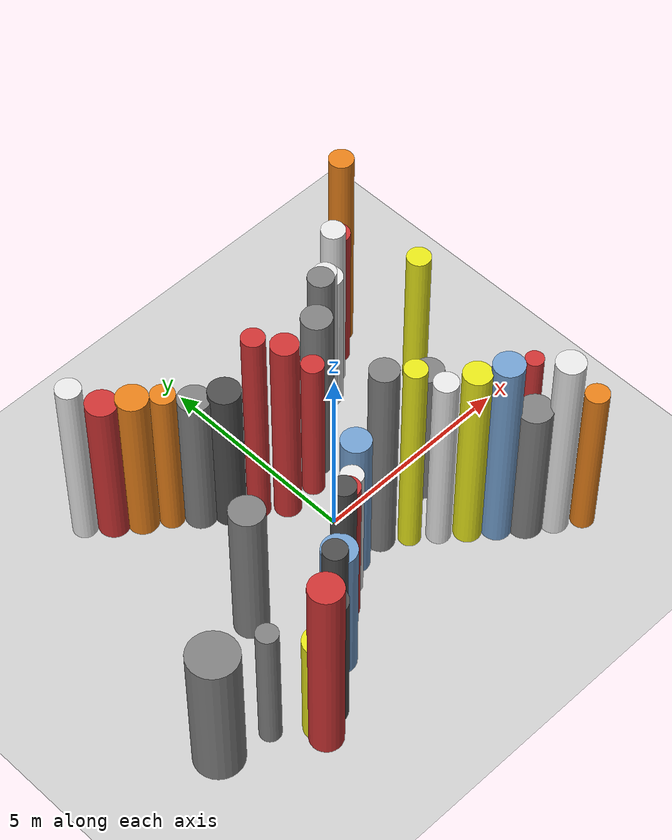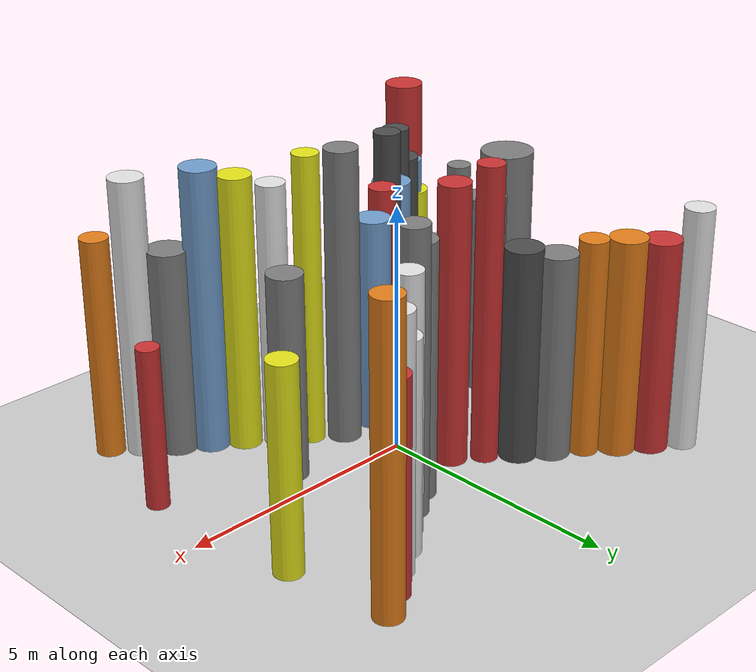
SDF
<?xml version='1.0'?>
<sdf version='1.6'>
  <world name='routeA_rl_v1__dense_recovery__rl_train__bottleneck_corridor__000072'>
    <!-- Sun light -->
    <light name='sun' type='directional'>
      <cast_shadows>1</cast_shadows>
      <pose>0 0 10 0 0 0</pose>
      <diffuse>0.8 0.8 0.8 1</diffuse>
      <specular>0.2 0.2 0.2 1</specular>
      <attenuation>
        <range>1000</range>
        <constant>0.9</constant>
        <linear>0.01</linear>
        <quadratic>0.001</quadratic>
      </attenuation>
      <direction>-0.5 0.1 -0.9</direction>
    </light>

    <!-- Ground plane -->
    <model name='ground_plane'>
      <static>1</static>
      <link name='link'>
        <collision name='collision'>
          <geometry>
            <plane>
              <normal>0 0 1</normal>
              <size>100 100</size>
            </plane>
          </geometry>
          <surface>
            <contact>
              <collide_bitmask>65535</collide_bitmask>
              <ode/>
            </contact>
            <friction>
              <ode>
                <mu>100</mu>
                <mu2>50</mu2>
              </ode>
              <torsional><ode/></torsional>
            </friction>
            <bounce/>
          </surface>
          <max_contacts>10</max_contacts>
        </collision>
        <visual name='visual'>
          <cast_shadows>0</cast_shadows>
          <geometry>
            <plane>
              <normal>0 0 1</normal>
              <size>100 100</size>
            </plane>
          </geometry>
          <material>
            <script>
              <uri>file://media/materials/scripts/gazebo.material</uri>
              <n>Gazebo/Grey</n>
            </script>
          </material>
        </visual>
      </link>
    </model>

    <!-- Environment -->
    <magnetic_field>6e-06 2.3e-05 -4.2e-05</magnetic_field>
    <atmosphere type='adiabatic'/>
    <physics name='default_physics' default='0' type='ode'>
      <gravity>0 0 -9.8</gravity>
      <max_step_size>0.004</max_step_size>
      <real_time_factor>1</real_time_factor>
      <real_time_update_rate>250</real_time_update_rate>
    </physics>
    <scene>
      <ambient>0.4 0.4 0.4 1</ambient>
      <background>0.7 0.7 0.7 1</background>
      <shadows>1</shadows>
    </scene>
    <wind/>
    <spherical_coordinates>
      <surface_model>EARTH_WGS84</surface_model>
      <latitude_deg>0</latitude_deg>
      <longitude_deg>0</longitude_deg>
      <elevation>0</elevation>
      <heading_deg>0</heading_deg>
    </spherical_coordinates>

    <!-- ============ OBSTACLES (40) ============ -->
    <model name='funnel_l_0'>
      <static>1</static>
      <link name='link'>
        <visual name='visual'>
          <geometry>
            <cylinder>
              <radius>0.3847</radius>
              <length>5.5488</length>
            </cylinder>
          </geometry>
          <material>
            <script>
              <n>Gazebo/Red</n>
              <uri>file://media/materials/scripts/gazebo.material</uri>
            </script>
            <ambient>0.8 0.2 0.2 1</ambient>
          </material>
        </visual>
        <collision name='collision'>
          <geometry>
            <cylinder>
              <radius>0.3847</radius>
              <length>5.5488</length>
            </cylinder>
          </geometry>
          <max_contacts>10</max_contacts>
          <surface>
            <contact><ode/></contact>
            <bounce/>
            <friction>
              <ode><mu>1</mu><mu2>1</mu2></ode>
              <torsional><ode/></torsional>
            </friction>
          </surface>
        </collision>
      </link>
      <pose>-4.0000 -3.8000 2.7744 0 0 0.0000</pose>
    </model>

    <model name='funnel_r_0'>
      <static>1</static>
      <link name='link'>
        <visual name='visual'>
          <geometry>
            <cylinder>
              <radius>0.2898</radius>
              <length>4.9447</length>
            </cylinder>
          </geometry>
          <material>
            <script>
              <n>Gazebo/White</n>
              <uri>file://media/materials/scripts/gazebo.material</uri>
            </script>
            <ambient>0.9 0.9 0.9 1</ambient>
          </material>
        </visual>
        <collision name='collision'>
          <geometry>
            <cylinder>
              <radius>0.2898</radius>
              <length>4.9447</length>
            </cylinder>
          </geometry>
          <max_contacts>10</max_contacts>
          <surface>
            <contact><ode/></contact>
            <bounce/>
            <friction>
              <ode><mu>1</mu><mu2>1</mu2></ode>
              <torsional><ode/></torsional>
            </friction>
          </surface>
        </collision>
      </link>
      <pose>-4.0000 3.8000 2.4723 0 0 0.0000</pose>
    </model>

    <model name='funnel_l_1'>
      <static>1</static>
      <link name='link'>
        <visual name='visual'>
          <geometry>
            <cylinder>
              <radius>0.3840</radius>
              <length>4.1660</length>
            </cylinder>
          </geometry>
          <material>
            <script>
              <n>Gazebo/DarkGrey</n>
              <uri>file://media/materials/scripts/gazebo.material</uri>
            </script>
            <ambient>0.3 0.3 0.3 1</ambient>
          </material>
        </visual>
        <collision name='collision'>
          <geometry>
            <cylinder>
              <radius>0.3840</radius>
              <length>4.1660</length>
            </cylinder>
          </geometry>
          <max_contacts>10</max_contacts>
          <surface>
            <contact><ode/></contact>
            <bounce/>
            <friction>
              <ode><mu>1</mu><mu2>1</mu2></ode>
              <torsional><ode/></torsional>
            </friction>
          </surface>
        </collision>
      </link>
      <pose>-3.4857 -3.4071 2.0830 0 0 0.0000</pose>
    </model>

    <model name='funnel_r_1'>
      <static>1</static>
      <link name='link'>
        <visual name='visual'>
          <geometry>
            <cylinder>
              <radius>0.3659</radius>
              <length>4.3541</length>
            </cylinder>
          </geometry>
          <material>
            <script>
              <n>Gazebo/Red</n>
              <uri>file://media/materials/scripts/gazebo.material</uri>
            </script>
            <ambient>0.8 0.2 0.2 1</ambient>
          </material>
        </visual>
        <collision name='collision'>
          <geometry>
            <cylinder>
              <radius>0.3659</radius>
              <length>4.3541</length>
            </cylinder>
          </geometry>
          <max_contacts>10</max_contacts>
          <surface>
            <contact><ode/></contact>
            <bounce/>
            <friction>
              <ode><mu>1</mu><mu2>1</mu2></ode>
              <torsional><ode/></torsional>
            </friction>
          </surface>
        </collision>
      </link>
      <pose>-3.4857 3.4071 2.1770 0 0 0.0000</pose>
    </model>

    <model name='funnel_l_2'>
      <static>1</static>
      <link name='link'>
        <visual name='visual'>
          <geometry>
            <cylinder>
              <radius>0.2720</radius>
              <length>5.0090</length>
            </cylinder>
          </geometry>
          <material>
            <script>
              <n>Gazebo/DarkGrey</n>
              <uri>file://media/materials/scripts/gazebo.material</uri>
            </script>
            <ambient>0.3 0.3 0.3 1</ambient>
          </material>
        </visual>
        <collision name='collision'>
          <geometry>
            <cylinder>
              <radius>0.2720</radius>
              <length>5.0090</length>
            </cylinder>
          </geometry>
          <max_contacts>10</max_contacts>
          <surface>
            <contact><ode/></contact>
            <bounce/>
            <friction>
              <ode><mu>1</mu><mu2>1</mu2></ode>
              <torsional><ode/></torsional>
            </friction>
          </surface>
        </collision>
      </link>
      <pose>-2.9714 -3.0143 2.5045 0 0 0.0000</pose>
    </model>

    <model name='funnel_r_2'>
      <static>1</static>
      <link name='link'>
        <visual name='visual'>
          <geometry>
            <cylinder>
              <radius>0.3672</radius>
              <length>4.4286</length>
            </cylinder>
          </geometry>
          <material>
            <script>
              <n>Gazebo/Orange</n>
              <uri>file://media/materials/scripts/gazebo.material</uri>
            </script>
            <ambient>0.9 0.5 0.1 1</ambient>
          </material>
        </visual>
        <collision name='collision'>
          <geometry>
            <cylinder>
              <radius>0.3672</radius>
              <length>4.4286</length>
            </cylinder>
          </geometry>
          <max_contacts>10</max_contacts>
          <surface>
            <contact><ode/></contact>
            <bounce/>
            <friction>
              <ode><mu>1</mu><mu2>1</mu2></ode>
              <torsional><ode/></torsional>
            </friction>
          </surface>
        </collision>
      </link>
      <pose>-2.9714 3.0143 2.2143 0 0 0.0000</pose>
    </model>

    <model name='funnel_l_3'>
      <static>1</static>
      <link name='link'>
        <visual name='visual'>
          <geometry>
            <cylinder>
              <radius>0.3977</radius>
              <length>4.1073</length>
            </cylinder>
          </geometry>
          <material>
            <script>
              <n>Gazebo/Blue</n>
              <uri>file://media/materials/scripts/gazebo.material</uri>
            </script>
            <ambient>0.447 0.624 0.812 1</ambient>
          </material>
        </visual>
        <collision name='collision'>
          <geometry>
            <cylinder>
              <radius>0.3977</radius>
              <length>4.1073</length>
            </cylinder>
          </geometry>
          <max_contacts>10</max_contacts>
          <surface>
            <contact><ode/></contact>
            <bounce/>
            <friction>
              <ode><mu>1</mu><mu2>1</mu2></ode>
              <torsional><ode/></torsional>
            </friction>
          </surface>
        </collision>
      </link>
      <pose>-2.4571 -2.6214 2.0537 0 0 0.0000</pose>
    </model>

    <model name='funnel_r_3'>
      <static>1</static>
      <link name='link'>
        <visual name='visual'>
          <geometry>
            <cylinder>
              <radius>0.2834</radius>
              <length>4.4329</length>
            </cylinder>
          </geometry>
          <material>
            <script>
              <n>Gazebo/Orange</n>
              <uri>file://media/materials/scripts/gazebo.material</uri>
            </script>
            <ambient>0.9 0.5 0.1 1</ambient>
          </material>
        </visual>
        <collision name='collision'>
          <geometry>
            <cylinder>
              <radius>0.2834</radius>
              <length>4.4329</length>
            </cylinder>
          </geometry>
          <max_contacts>10</max_contacts>
          <surface>
            <contact><ode/></contact>
            <bounce/>
            <friction>
              <ode><mu>1</mu><mu2>1</mu2></ode>
              <torsional><ode/></torsional>
            </friction>
          </surface>
        </collision>
      </link>
      <pose>-2.4571 2.6214 2.2165 0 0 0.0000</pose>
    </model>

    <model name='funnel_l_4'>
      <static>1</static>
      <link name='link'>
        <visual name='visual'>
          <geometry>
            <cylinder>
              <radius>0.2694</radius>
              <length>5.3896</length>
            </cylinder>
          </geometry>
          <material>
            <script>
              <n>Gazebo/DarkGrey</n>
              <uri>file://media/materials/scripts/gazebo.material</uri>
            </script>
            <ambient>0.3 0.3 0.3 1</ambient>
          </material>
        </visual>
        <collision name='collision'>
          <geometry>
            <cylinder>
              <radius>0.2694</radius>
              <length>5.3896</length>
            </cylinder>
          </geometry>
          <max_contacts>10</max_contacts>
          <surface>
            <contact><ode/></contact>
            <bounce/>
            <friction>
              <ode><mu>1</mu><mu2>1</mu2></ode>
              <torsional><ode/></torsional>
            </friction>
          </surface>
        </collision>
      </link>
      <pose>-1.9429 -2.2286 2.6948 0 0 0.0000</pose>
    </model>

    <model name='funnel_r_4'>
      <static>1</static>
      <link name='link'>
        <visual name='visual'>
          <geometry>
            <cylinder>
              <radius>0.3754</radius>
              <length>4.1881</length>
            </cylinder>
          </geometry>
          <material>
            <script>
              <n>Gazebo/Grey</n>
              <uri>file://media/materials/scripts/gazebo.material</uri>
            </script>
            <ambient>0.5 0.5 0.5 1</ambient>
          </material>
        </visual>
        <collision name='collision'>
          <geometry>
            <cylinder>
              <radius>0.3754</radius>
              <length>4.1881</length>
            </cylinder>
          </geometry>
          <max_contacts>10</max_contacts>
          <surface>
            <contact><ode/></contact>
            <bounce/>
            <friction>
              <ode><mu>1</mu><mu2>1</mu2></ode>
              <torsional><ode/></torsional>
            </friction>
          </surface>
        </collision>
      </link>
      <pose>-1.9429 2.2286 2.0940 0 0 0.0000</pose>
    </model>

    <model name='funnel_l_5'>
      <static>1</static>
      <link name='link'>
        <visual name='visual'>
          <geometry>
            <cylinder>
              <radius>0.2812</radius>
              <length>4.4883</length>
            </cylinder>
          </geometry>
          <material>
            <script>
              <n>Gazebo/Red</n>
              <uri>file://media/materials/scripts/gazebo.material</uri>
            </script>
            <ambient>0.8 0.2 0.2 1</ambient>
          </material>
        </visual>
        <collision name='collision'>
          <geometry>
            <cylinder>
              <radius>0.2812</radius>
              <length>4.4883</length>
            </cylinder>
          </geometry>
          <max_contacts>10</max_contacts>
          <surface>
            <contact><ode/></contact>
            <bounce/>
            <friction>
              <ode><mu>1</mu><mu2>1</mu2></ode>
              <torsional><ode/></torsional>
            </friction>
          </surface>
        </collision>
      </link>
      <pose>-1.4286 -1.8357 2.2442 0 0 0.0000</pose>
    </model>

    <model name='funnel_r_5'>
      <static>1</static>
      <link name='link'>
        <visual name='visual'>
          <geometry>
            <cylinder>
              <radius>0.3725</radius>
              <length>4.3444</length>
            </cylinder>
          </geometry>
          <material>
            <script>
              <n>Gazebo/DarkGrey</n>
              <uri>file://media/materials/scripts/gazebo.material</uri>
            </script>
            <ambient>0.3 0.3 0.3 1</ambient>
          </material>
        </visual>
        <collision name='collision'>
          <geometry>
            <cylinder>
              <radius>0.3725</radius>
              <length>4.3444</length>
            </cylinder>
          </geometry>
          <max_contacts>10</max_contacts>
          <surface>
            <contact><ode/></contact>
            <bounce/>
            <friction>
              <ode><mu>1</mu><mu2>1</mu2></ode>
              <torsional><ode/></torsional>
            </friction>
          </surface>
        </collision>
      </link>
      <pose>-1.4286 1.8357 2.1722 0 0 0.0000</pose>
    </model>

    <model name='funnel_l_6'>
      <static>1</static>
      <link name='link'>
        <visual name='visual'>
          <geometry>
            <cylinder>
              <radius>0.2634</radius>
              <length>4.0283</length>
            </cylinder>
          </geometry>
          <material>
            <script>
              <n>Gazebo/White</n>
              <uri>file://media/materials/scripts/gazebo.material</uri>
            </script>
            <ambient>0.9 0.9 0.9 1</ambient>
          </material>
        </visual>
        <collision name='collision'>
          <geometry>
            <cylinder>
              <radius>0.2634</radius>
              <length>4.0283</length>
            </cylinder>
          </geometry>
          <max_contacts>10</max_contacts>
          <surface>
            <contact><ode/></contact>
            <bounce/>
            <friction>
              <ode><mu>1</mu><mu2>1</mu2></ode>
              <torsional><ode/></torsional>
            </friction>
          </surface>
        </collision>
      </link>
      <pose>-0.9143 -1.4429 2.0141 0 0 0.0000</pose>
    </model>

    <model name='funnel_r_6'>
      <static>1</static>
      <link name='link'>
        <visual name='visual'>
          <geometry>
            <cylinder>
              <radius>0.2640</radius>
              <length>5.9931</length>
            </cylinder>
          </geometry>
          <material>
            <script>
              <n>Gazebo/Red</n>
              <uri>file://media/materials/scripts/gazebo.material</uri>
            </script>
            <ambient>0.8 0.2 0.2 1</ambient>
          </material>
        </visual>
        <collision name='collision'>
          <geometry>
            <cylinder>
              <radius>0.2640</radius>
              <length>5.9931</length>
            </cylinder>
          </geometry>
          <max_contacts>10</max_contacts>
          <surface>
            <contact><ode/></contact>
            <bounce/>
            <friction>
              <ode><mu>1</mu><mu2>1</mu2></ode>
              <torsional><ode/></torsional>
            </friction>
          </surface>
        </collision>
      </link>
      <pose>-0.9143 1.4429 2.9966 0 0 0.0000</pose>
    </model>

    <model name='funnel_l_7'>
      <static>1</static>
      <link name='link'>
        <visual name='visual'>
          <geometry>
            <cylinder>
              <radius>0.3439</radius>
              <length>4.3706</length>
            </cylinder>
          </geometry>
          <material>
            <script>
              <n>Gazebo/Blue</n>
              <uri>file://media/materials/scripts/gazebo.material</uri>
            </script>
            <ambient>0.447 0.624 0.812 1</ambient>
          </material>
        </visual>
        <collision name='collision'>
          <geometry>
            <cylinder>
              <radius>0.3439</radius>
              <length>4.3706</length>
            </cylinder>
          </geometry>
          <max_contacts>10</max_contacts>
          <surface>
            <contact><ode/></contact>
            <bounce/>
            <friction>
              <ode><mu>1</mu><mu2>1</mu2></ode>
              <torsional><ode/></torsional>
            </friction>
          </surface>
        </collision>
      </link>
      <pose>-0.4000 -1.0500 2.1853 0 0 0.0000</pose>
    </model>

    <model name='funnel_r_7'>
      <static>1</static>
      <link name='link'>
        <visual name='visual'>
          <geometry>
            <cylinder>
              <radius>0.3145</radius>
              <length>5.6703</length>
            </cylinder>
          </geometry>
          <material>
            <script>
              <n>Gazebo/Red</n>
              <uri>file://media/materials/scripts/gazebo.material</uri>
            </script>
            <ambient>0.8 0.2 0.2 1</ambient>
          </material>
        </visual>
        <collision name='collision'>
          <geometry>
            <cylinder>
              <radius>0.3145</radius>
              <length>5.6703</length>
            </cylinder>
          </geometry>
          <max_contacts>10</max_contacts>
          <surface>
            <contact><ode/></contact>
            <bounce/>
            <friction>
              <ode><mu>1</mu><mu2>1</mu2></ode>
              <torsional><ode/></torsional>
            </friction>
          </surface>
        </collision>
      </link>
      <pose>-0.4000 1.0500 2.8352 0 0 0.0000</pose>
    </model>

    <model name='funnel_out_l_0'>
      <static>1</static>
      <link name='link'>
        <visual name='visual'>
          <geometry>
            <cylinder>
              <radius>0.3296</radius>
              <length>5.9758</length>
            </cylinder>
          </geometry>
          <material>
            <script>
              <n>Gazebo/Grey</n>
              <uri>file://media/materials/scripts/gazebo.material</uri>
            </script>
            <ambient>0.5 0.5 0.5 1</ambient>
          </material>
        </visual>
        <collision name='collision'>
          <geometry>
            <cylinder>
              <radius>0.3296</radius>
              <length>5.9758</length>
            </cylinder>
          </geometry>
          <max_contacts>10</max_contacts>
          <surface>
            <contact><ode/></contact>
            <bounce/>
            <friction>
              <ode><mu>1</mu><mu2>1</mu2></ode>
              <torsional><ode/></torsional>
            </friction>
          </surface>
        </collision>
      </link>
      <pose>0.4000 -1.0500 2.9879 0 0 0.0000</pose>
    </model>

    <model name='funnel_out_r_0'>
      <static>1</static>
      <link name='link'>
        <visual name='visual'>
          <geometry>
            <cylinder>
              <radius>0.2594</radius>
              <length>4.3301</length>
            </cylinder>
          </geometry>
          <material>
            <script>
              <n>Gazebo/Red</n>
              <uri>file://media/materials/scripts/gazebo.material</uri>
            </script>
            <ambient>0.8 0.2 0.2 1</ambient>
          </material>
        </visual>
        <collision name='collision'>
          <geometry>
            <cylinder>
              <radius>0.2594</radius>
              <length>4.3301</length>
            </cylinder>
          </geometry>
          <max_contacts>10</max_contacts>
          <surface>
            <contact><ode/></contact>
            <bounce/>
            <friction>
              <ode><mu>1</mu><mu2>1</mu2></ode>
              <torsional><ode/></torsional>
            </friction>
          </surface>
        </collision>
      </link>
      <pose>0.4000 1.0500 2.1651 0 0 0.0000</pose>
    </model>

    <model name='funnel_out_l_1'>
      <static>1</static>
      <link name='link'>
        <visual name='visual'>
          <geometry>
            <cylinder>
              <radius>0.2590</radius>
              <length>5.9106</length>
            </cylinder>
          </geometry>
          <material>
            <script>
              <n>Gazebo/Yellow</n>
              <uri>file://media/materials/scripts/gazebo.material</uri>
            </script>
            <ambient>0.9 0.9 0.1 1</ambient>
          </material>
        </visual>
        <collision name='collision'>
          <geometry>
            <cylinder>
              <radius>0.2590</radius>
              <length>5.9106</length>
            </cylinder>
          </geometry>
          <max_contacts>10</max_contacts>
          <surface>
            <contact><ode/></contact>
            <bounce/>
            <friction>
              <ode><mu>1</mu><mu2>1</mu2></ode>
              <torsional><ode/></torsional>
            </friction>
          </surface>
        </collision>
      </link>
      <pose>0.9143 -1.4429 2.9553 0 0 0.0000</pose>
    </model>

    <model name='funnel_out_r_1'>
      <static>1</static>
      <link name='link'>
        <visual name='visual'>
          <geometry>
            <cylinder>
              <radius>0.3531</radius>
              <length>5.1014</length>
            </cylinder>
          </geometry>
          <material>
            <script>
              <n>Gazebo/Grey</n>
              <uri>file://media/materials/scripts/gazebo.material</uri>
            </script>
            <ambient>0.5 0.5 0.5 1</ambient>
          </material>
        </visual>
        <collision name='collision'>
          <geometry>
            <cylinder>
              <radius>0.3531</radius>
              <length>5.1014</length>
            </cylinder>
          </geometry>
          <max_contacts>10</max_contacts>
          <surface>
            <contact><ode/></contact>
            <bounce/>
            <friction>
              <ode><mu>1</mu><mu2>1</mu2></ode>
              <torsional><ode/></torsional>
            </friction>
          </surface>
        </collision>
      </link>
      <pose>0.9143 1.4429 2.5507 0 0 0.0000</pose>
    </model>

    <model name='funnel_out_l_2'>
      <static>1</static>
      <link name='link'>
        <visual name='visual'>
          <geometry>
            <cylinder>
              <radius>0.2828</radius>
              <length>5.3703</length>
            </cylinder>
          </geometry>
          <material>
            <script>
              <n>Gazebo/White</n>
              <uri>file://media/materials/scripts/gazebo.material</uri>
            </script>
            <ambient>0.9 0.9 0.9 1</ambient>
          </material>
        </visual>
        <collision name='collision'>
          <geometry>
            <cylinder>
              <radius>0.2828</radius>
              <length>5.3703</length>
            </cylinder>
          </geometry>
          <max_contacts>10</max_contacts>
          <surface>
            <contact><ode/></contact>
            <bounce/>
            <friction>
              <ode><mu>1</mu><mu2>1</mu2></ode>
              <torsional><ode/></torsional>
            </friction>
          </surface>
        </collision>
      </link>
      <pose>1.4286 -1.8357 2.6852 0 0 0.0000</pose>
    </model>

    <model name='funnel_out_r_2'>
      <static>1</static>
      <link name='link'>
        <visual name='visual'>
          <geometry>
            <cylinder>
              <radius>0.2946</radius>
              <length>5.6557</length>
            </cylinder>
          </geometry>
          <material>
            <script>
              <n>Gazebo/Grey</n>
              <uri>file://media/materials/scripts/gazebo.material</uri>
            </script>
            <ambient>0.5 0.5 0.5 1</ambient>
          </material>
        </visual>
        <collision name='collision'>
          <geometry>
            <cylinder>
              <radius>0.2946</radius>
              <length>5.6557</length>
            </cylinder>
          </geometry>
          <max_contacts>10</max_contacts>
          <surface>
            <contact><ode/></contact>
            <bounce/>
            <friction>
              <ode><mu>1</mu><mu2>1</mu2></ode>
              <torsional><ode/></torsional>
            </friction>
          </surface>
        </collision>
      </link>
      <pose>1.4286 1.8357 2.8278 0 0 0.0000</pose>
    </model>

    <model name='funnel_out_l_3'>
      <static>1</static>
      <link name='link'>
        <visual name='visual'>
          <geometry>
            <cylinder>
              <radius>0.3256</radius>
              <length>5.5601</length>
            </cylinder>
          </geometry>
          <material>
            <script>
              <n>Gazebo/Yellow</n>
              <uri>file://media/materials/scripts/gazebo.material</uri>
            </script>
            <ambient>0.9 0.9 0.1 1</ambient>
          </material>
        </visual>
        <collision name='collision'>
          <geometry>
            <cylinder>
              <radius>0.3256</radius>
              <length>5.5601</length>
            </cylinder>
          </geometry>
          <max_contacts>10</max_contacts>
          <surface>
            <contact><ode/></contact>
            <bounce/>
            <friction>
              <ode><mu>1</mu><mu2>1</mu2></ode>
              <torsional><ode/></torsional>
            </friction>
          </surface>
        </collision>
      </link>
      <pose>1.9429 -2.2286 2.7800 0 0 0.0000</pose>
    </model>

    <model name='funnel_out_r_3'>
      <static>1</static>
      <link name='link'>
        <visual name='visual'>
          <geometry>
            <cylinder>
              <radius>0.2644</radius>
              <length>5.0949</length>
            </cylinder>
          </geometry>
          <material>
            <script>
              <n>Gazebo/White</n>
              <uri>file://media/materials/scripts/gazebo.material</uri>
            </script>
            <ambient>0.9 0.9 0.9 1</ambient>
          </material>
        </visual>
        <collision name='collision'>
          <geometry>
            <cylinder>
              <radius>0.2644</radius>
              <length>5.0949</length>
            </cylinder>
          </geometry>
          <max_contacts>10</max_contacts>
          <surface>
            <contact><ode/></contact>
            <bounce/>
            <friction>
              <ode><mu>1</mu><mu2>1</mu2></ode>
              <torsional><ode/></torsional>
            </friction>
          </surface>
        </collision>
      </link>
      <pose>1.9429 2.2286 2.5475 0 0 0.0000</pose>
    </model>

    <model name='funnel_out_l_4'>
      <static>1</static>
      <link name='link'>
        <visual name='visual'>
          <geometry>
            <cylinder>
              <radius>0.3537</radius>
              <length>5.7441</length>
            </cylinder>
          </geometry>
          <material>
            <script>
              <n>Gazebo/Blue</n>
              <uri>file://media/materials/scripts/gazebo.material</uri>
            </script>
            <ambient>0.447 0.624 0.812 1</ambient>
          </material>
        </visual>
        <collision name='collision'>
          <geometry>
            <cylinder>
              <radius>0.3537</radius>
              <length>5.7441</length>
            </cylinder>
          </geometry>
          <max_contacts>10</max_contacts>
          <surface>
            <contact><ode/></contact>
            <bounce/>
            <friction>
              <ode><mu>1</mu><mu2>1</mu2></ode>
              <torsional><ode/></torsional>
            </friction>
          </surface>
        </collision>
      </link>
      <pose>2.4571 -2.6214 2.8720 0 0 0.0000</pose>
    </model>

    <model name='funnel_out_r_4'>
      <static>1</static>
      <link name='link'>
        <visual name='visual'>
          <geometry>
            <cylinder>
              <radius>0.3159</radius>
              <length>4.1989</length>
            </cylinder>
          </geometry>
          <material>
            <script>
              <n>Gazebo/White</n>
              <uri>file://media/materials/scripts/gazebo.material</uri>
            </script>
            <ambient>0.9 0.9 0.9 1</ambient>
          </material>
        </visual>
        <collision name='collision'>
          <geometry>
            <cylinder>
              <radius>0.3159</radius>
              <length>4.1989</length>
            </cylinder>
          </geometry>
          <max_contacts>10</max_contacts>
          <surface>
            <contact><ode/></contact>
            <bounce/>
            <friction>
              <ode><mu>1</mu><mu2>1</mu2></ode>
              <torsional><ode/></torsional>
            </friction>
          </surface>
        </collision>
      </link>
      <pose>2.4571 2.6214 2.0994 0 0 0.0000</pose>
    </model>

    <model name='funnel_out_l_5'>
      <static>1</static>
      <link name='link'>
        <visual name='visual'>
          <geometry>
            <cylinder>
              <radius>0.3990</radius>
              <length>4.1644</length>
            </cylinder>
          </geometry>
          <material>
            <script>
              <n>Gazebo/Grey</n>
              <uri>file://media/materials/scripts/gazebo.material</uri>
            </script>
            <ambient>0.5 0.5 0.5 1</ambient>
          </material>
        </visual>
        <collision name='collision'>
          <geometry>
            <cylinder>
              <radius>0.3990</radius>
              <length>4.1644</length>
            </cylinder>
          </geometry>
          <max_contacts>10</max_contacts>
          <surface>
            <contact><ode/></contact>
            <bounce/>
            <friction>
              <ode><mu>1</mu><mu2>1</mu2></ode>
              <torsional><ode/></torsional>
            </friction>
          </surface>
        </collision>
      </link>
      <pose>2.9714 -3.0143 2.0822 0 0 0.0000</pose>
    </model>

    <model name='funnel_out_r_5'>
      <static>1</static>
      <link name='link'>
        <visual name='visual'>
          <geometry>
            <cylinder>
              <radius>0.2794</radius>
              <length>4.9972</length>
            </cylinder>
          </geometry>
          <material>
            <script>
              <n>Gazebo/White</n>
              <uri>file://media/materials/scripts/gazebo.material</uri>
            </script>
            <ambient>0.9 0.9 0.9 1</ambient>
          </material>
        </visual>
        <collision name='collision'>
          <geometry>
            <cylinder>
              <radius>0.2794</radius>
              <length>4.9972</length>
            </cylinder>
          </geometry>
          <max_contacts>10</max_contacts>
          <surface>
            <contact><ode/></contact>
            <bounce/>
            <friction>
              <ode><mu>1</mu><mu2>1</mu2></ode>
              <torsional><ode/></torsional>
            </friction>
          </surface>
        </collision>
      </link>
      <pose>2.9714 3.0143 2.4986 0 0 0.0000</pose>
    </model>

    <model name='funnel_out_l_6'>
      <static>1</static>
      <link name='link'>
        <visual name='visual'>
          <geometry>
            <cylinder>
              <radius>0.3347</radius>
              <length>5.6072</length>
            </cylinder>
          </geometry>
          <material>
            <script>
              <n>Gazebo/White</n>
              <uri>file://media/materials/scripts/gazebo.material</uri>
            </script>
            <ambient>0.9 0.9 0.9 1</ambient>
          </material>
        </visual>
        <collision name='collision'>
          <geometry>
            <cylinder>
              <radius>0.3347</radius>
              <length>5.6072</length>
            </cylinder>
          </geometry>
          <max_contacts>10</max_contacts>
          <surface>
            <contact><ode/></contact>
            <bounce/>
            <friction>
              <ode><mu>1</mu><mu2>1</mu2></ode>
              <torsional><ode/></torsional>
            </friction>
          </surface>
        </collision>
      </link>
      <pose>3.4857 -3.4071 2.8036 0 0 0.0000</pose>
    </model>

    <model name='funnel_out_r_6'>
      <static>1</static>
      <link name='link'>
        <visual name='visual'>
          <geometry>
            <cylinder>
              <radius>0.2998</radius>
              <length>4.1810</length>
            </cylinder>
          </geometry>
          <material>
            <script>
              <n>Gazebo/Red</n>
              <uri>file://media/materials/scripts/gazebo.material</uri>
            </script>
            <ambient>0.8 0.2 0.2 1</ambient>
          </material>
        </visual>
        <collision name='collision'>
          <geometry>
            <cylinder>
              <radius>0.2998</radius>
              <length>4.1810</length>
            </cylinder>
          </geometry>
          <max_contacts>10</max_contacts>
          <surface>
            <contact><ode/></contact>
            <bounce/>
            <friction>
              <ode><mu>1</mu><mu2>1</mu2></ode>
              <torsional><ode/></torsional>
            </friction>
          </surface>
        </collision>
      </link>
      <pose>3.4857 3.4071 2.0905 0 0 0.0000</pose>
    </model>

    <model name='funnel_out_l_7'>
      <static>1</static>
      <link name='link'>
        <visual name='visual'>
          <geometry>
            <cylinder>
              <radius>0.2759</radius>
              <length>4.4637</length>
            </cylinder>
          </geometry>
          <material>
            <script>
              <n>Gazebo/Orange</n>
              <uri>file://media/materials/scripts/gazebo.material</uri>
            </script>
            <ambient>0.9 0.5 0.1 1</ambient>
          </material>
        </visual>
        <collision name='collision'>
          <geometry>
            <cylinder>
              <radius>0.2759</radius>
              <length>4.4637</length>
            </cylinder>
          </geometry>
          <max_contacts>10</max_contacts>
          <surface>
            <contact><ode/></contact>
            <bounce/>
            <friction>
              <ode><mu>1</mu><mu2>1</mu2></ode>
              <torsional><ode/></torsional>
            </friction>
          </surface>
        </collision>
      </link>
      <pose>4.0000 -3.8000 2.2318 0 0 0.0000</pose>
    </model>

    <model name='funnel_out_r_7'>
      <static>1</static>
      <link name='link'>
        <visual name='visual'>
          <geometry>
            <cylinder>
              <radius>0.2870</radius>
              <length>5.8688</length>
            </cylinder>
          </geometry>
          <material>
            <script>
              <n>Gazebo/Orange</n>
              <uri>file://media/materials/scripts/gazebo.material</uri>
            </script>
            <ambient>0.9 0.5 0.1 1</ambient>
          </material>
        </visual>
        <collision name='collision'>
          <geometry>
            <cylinder>
              <radius>0.2870</radius>
              <length>5.8688</length>
            </cylinder>
          </geometry>
          <max_contacts>10</max_contacts>
          <surface>
            <contact><ode/></contact>
            <bounce/>
            <friction>
              <ode><mu>1</mu><mu2>1</mu2></ode>
              <torsional><ode/></torsional>
            </friction>
          </surface>
        </collision>
      </link>
      <pose>4.0000 3.8000 2.9344 0 0 0.0000</pose>
    </model>

    <model name='bn_scatter_0'>
      <static>1</static>
      <link name='link'>
        <visual name='visual'>
          <geometry>
            <cylinder>
              <radius>0.3769</radius>
              <length>3.9951</length>
            </cylinder>
          </geometry>
          <material>
            <script>
              <n>Gazebo/Blue</n>
              <uri>file://media/materials/scripts/gazebo.material</uri>
            </script>
            <ambient>0.447 0.624 0.812 1</ambient>
          </material>
        </visual>
        <collision name='collision'>
          <geometry>
            <cylinder>
              <radius>0.3769</radius>
              <length>3.9951</length>
            </cylinder>
          </geometry>
          <max_contacts>10</max_contacts>
          <surface>
            <contact><ode/></contact>
            <bounce/>
            <friction>
              <ode><mu>1</mu><mu2>1</mu2></ode>
              <torsional><ode/></torsional>
            </friction>
          </surface>
        </collision>
      </link>
      <pose>-3.7515 -3.5595 1.9976 0 0 0.0000</pose>
    </model>

    <model name='bn_scatter_1'>
      <static>1</static>
      <link name='link'>
        <visual name='visual'>
          <geometry>
            <cylinder>
              <radius>0.5764</radius>
              <length>3.8831</length>
            </cylinder>
          </geometry>
          <material>
            <script>
              <n>Gazebo/Grey</n>
              <uri>file://media/materials/scripts/gazebo.material</uri>
            </script>
            <ambient>0.5 0.5 0.5 1</ambient>
          </material>
        </visual>
        <collision name='collision'>
          <geometry>
            <cylinder>
              <radius>0.5764</radius>
              <length>3.8831</length>
            </cylinder>
          </geometry>
          <max_contacts>10</max_contacts>
          <surface>
            <contact><ode/></contact>
            <bounce/>
            <friction>
              <ode><mu>1</mu><mu2>1</mu2></ode>
              <torsional><ode/></torsional>
            </friction>
          </surface>
        </collision>
      </link>
      <pose>-5.9137 -2.5508 1.9416 0 0 0.0000</pose>
    </model>

    <model name='bn_scatter_2'>
      <static>1</static>
      <link name='link'>
        <visual name='visual'>
          <geometry>
            <cylinder>
              <radius>0.3489</radius>
              <length>4.1509</length>
            </cylinder>
          </geometry>
          <material>
            <script>
              <n>Gazebo/Grey</n>
              <uri>file://media/materials/scripts/gazebo.material</uri>
            </script>
            <ambient>0.5 0.5 0.5 1</ambient>
          </material>
        </visual>
        <collision name='collision'>
          <geometry>
            <cylinder>
              <radius>0.3489</radius>
              <length>4.1509</length>
            </cylinder>
          </geometry>
          <max_contacts>10</max_contacts>
          <surface>
            <contact><ode/></contact>
            <bounce/>
            <friction>
              <ode><mu>1</mu><mu2>1</mu2></ode>
              <torsional><ode/></torsional>
            </friction>
          </surface>
        </collision>
      </link>
      <pose>2.1366 -0.6993 2.0754 0 0 0.0000</pose>
    </model>

    <model name='bn_scatter_3'>
      <static>1</static>
      <link name='link'>
        <visual name='visual'>
          <geometry>
            <cylinder>
              <radius>0.3856</radius>
              <length>3.2864</length>
            </cylinder>
          </geometry>
          <material>
            <script>
              <n>Gazebo/Yellow</n>
              <uri>file://media/materials/scripts/gazebo.material</uri>
            </script>
            <ambient>0.9 0.9 0.1 1</ambient>
          </material>
        </visual>
        <collision name='collision'>
          <geometry>
            <cylinder>
              <radius>0.3856</radius>
              <length>3.2864</length>
            </cylinder>
          </geometry>
          <max_contacts>10</max_contacts>
          <surface>
            <contact><ode/></contact>
            <bounce/>
            <friction>
              <ode><mu>1</mu><mu2>1</mu2></ode>
              <torsional><ode/></torsional>
            </friction>
          </surface>
        </collision>
      </link>
      <pose>-3.9065 -3.5286 1.6432 0 0 0.0000</pose>
    </model>

    <model name='bn_scatter_4'>
      <static>1</static>
      <link name='link'>
        <visual name='visual'>
          <geometry>
            <cylinder>
              <radius>0.2510</radius>
              <length>3.7728</length>
            </cylinder>
          </geometry>
          <material>
            <script>
              <n>Gazebo/Grey</n>
              <uri>file://media/materials/scripts/gazebo.material</uri>
            </script>
            <ambient>0.5 0.5 0.5 1</ambient>
          </material>
        </visual>
        <collision name='collision'>
          <geometry>
            <cylinder>
              <radius>0.2510</radius>
              <length>3.7728</length>
            </cylinder>
          </geometry>
          <max_contacts>10</max_contacts>
          <surface>
            <contact><ode/></contact>
            <bounce/>
            <friction>
              <ode><mu>1</mu><mu2>1</mu2></ode>
              <torsional><ode/></torsional>
            </friction>
          </surface>
        </collision>
      </link>
      <pose>-4.7540 -2.8886 1.8864 0 0 0.0000</pose>
    </model>

    <model name='bn_scatter_5'>
      <static>1</static>
      <link name='link'>
        <visual name='visual'>
          <geometry>
            <cylinder>
              <radius>0.2208</radius>
              <length>3.2259</length>
            </cylinder>
          </geometry>
          <material>
            <script>
              <n>Gazebo/Red</n>
              <uri>file://media/materials/scripts/gazebo.material</uri>
            </script>
            <ambient>0.8 0.2 0.2 1</ambient>
          </material>
        </visual>
        <collision name='collision'>
          <geometry>
            <cylinder>
              <radius>0.2208</radius>
              <length>3.2259</length>
            </cylinder>
          </geometry>
          <max_contacts>10</max_contacts>
          <surface>
            <contact><ode/></contact>
            <bounce/>
            <friction>
              <ode><mu>1</mu><mu2>1</mu2></ode>
              <torsional><ode/></torsional>
            </friction>
          </surface>
        </collision>
      </link>
      <pose>4.5624 -1.6003 1.6129 0 0 0.0000</pose>
    </model>

    <model name='bn_scatter_6'>
      <static>1</static>
      <link name='link'>
        <visual name='visual'>
          <geometry>
            <cylinder>
              <radius>0.2835</radius>
              <length>4.1080</length>
            </cylinder>
          </geometry>
          <material>
            <script>
              <n>Gazebo/Yellow</n>
              <uri>file://media/materials/scripts/gazebo.material</uri>
            </script>
            <ambient>0.9 0.9 0.1 1</ambient>
          </material>
        </visual>
        <collision name='collision'>
          <geometry>
            <cylinder>
              <radius>0.2835</radius>
              <length>4.1080</length>
            </cylinder>
          </geometry>
          <max_contacts>10</max_contacts>
          <surface>
            <contact><ode/></contact>
            <bounce/>
            <friction>
              <ode><mu>1</mu><mu2>1</mu2></ode>
              <torsional><ode/></torsional>
            </friction>
          </surface>
        </collision>
      </link>
      <pose>4.3143 1.6917 2.0540 0 0 0.0000</pose>
    </model>

    <model name='bn_scatter_7'>
      <static>1</static>
      <link name='link'>
        <visual name='visual'>
          <geometry>
            <cylinder>
              <radius>0.4012</radius>
              <length>4.1579</length>
            </cylinder>
          </geometry>
          <material>
            <script>
              <n>Gazebo/Grey</n>
              <uri>file://media/materials/scripts/gazebo.material</uri>
            </script>
            <ambient>0.5 0.5 0.5 1</ambient>
          </material>
        </visual>
        <collision name='collision'>
          <geometry>
            <cylinder>
              <radius>0.4012</radius>
              <length>4.1579</length>
            </cylinder>
          </geometry>
          <max_contacts>10</max_contacts>
          <surface>
            <contact><ode/></contact>
            <bounce/>
            <friction>
              <ode><mu>1</mu><mu2>1</mu2></ode>
              <torsional><ode/></torsional>
            </friction>
          </surface>
        </collision>
      </link>
      <pose>-3.1445 -0.6405 2.0790 0 0 0.0000</pose>
    </model>

    <!-- GUI camera -->
    <gui fullscreen='0'>
      <camera name='user_camera'>
        <pose>-15 0 18 0 0.85 0.15</pose>
        <view_controller>orbit</view_controller>
        <projection_type>perspective</projection_type>
      </camera>
    </gui>
  </world>
</sdf>
